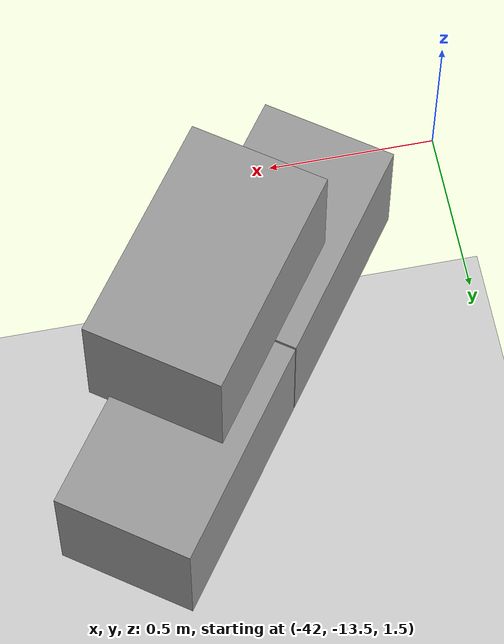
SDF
<sdf version="1.7">
 <world name="default">
  <model name="ground_plane">
   <static>1</static>
   <link name="link">
    <collision name="collision">
     <geometry><plane><normal>0 0 1</normal><size>100 100</size></plane></geometry>
     <surface>
      <contact><collide_bitmask>65535</collide_bitmask></contact>
      <friction><ode><mu>100</mu><mu2>50</mu2></ode></friction>
     </surface>
    </collision>
    <visual name="visual">
     <cast_shadows>0</cast_shadows>
     <geometry><plane><normal>0 0 1</normal><size>100 100</size></plane></geometry>
     <material>
      <script><uri>file://media/materials/scripts/gazebo.material</uri><name>Gazebo/Grey</name></script>
     </material>
    </visual>
   </link>
  </model>
  <model name="Add_Box_clone_clone_3_clone_23">
   <link name="link">
    <inertial>
     <mass>1</mass>
     <inertia>
      <ixx>0.166667</ixx>
      <ixy>0</ixy>
      <ixz>0</ixz>
      <iyy>0.166667</iyy>
      <iyz>0</iyz>
      <izz>0.166667</izz>
     </inertia>
    </inertial>
    <kinematic>1</kinematic>
    <gravity>0</gravity>
    <visual name="visual">
     <geometry><box><size>0.686 0.406 0.381</size></box></geometry>
     <material>
      <script><name>Gazebo/Grey</name><uri>file://media/materials/scripts/gazebo.material</uri></script>
      <shader type="pixel"><normal_map>__default__</normal_map></shader>
      <ambient>0.3 0.3 0.3 1</ambient>
      <diffuse>0.7 0.7 0.7 1</diffuse>
      <specular>0.01 0.01 0.01 1</specular>
      <emissive>0 0 0 1</emissive>
     </material>
    </visual>
    <collision name="collision">
     <geometry><box><size>1 1 1</size></box></geometry>
     <surface>
      <friction>
       <ode><mu>1</mu><mu2>1</mu2><fdir1>0 0 0</fdir1><slip1>0</slip1><slip2>0</slip2></ode>
       <torsional>
        <coefficient>1</coefficient>
        <patch_radius>0</patch_radius>
        <surface_radius>0</surface_radius>
        <use_patch_radius>1</use_patch_radius>
        <ode><slip>0</slip></ode>
       </torsional>
      </friction>
      <bounce><restitution_coefficient>0</restitution_coefficient><threshold>1e+06</threshold></bounce>
      <contact>
       <collide_without_contact>0</collide_without_contact>
       <collide_without_contact_bitmask>1</collide_without_contact_bitmask>
       <collide_bitmask>1</collide_bitmask>
       <ode>
        <soft_cfm>0</soft_cfm>
        <soft_erp>0.2</soft_erp>
        <kp>1e+13</kp>
        <kd>1</kd>
        <max_vel>0.01</max_vel>
        <min_depth>0</min_depth>
       </ode>
       <bullet>
        <split_impulse>1</split_impulse>
        <split_impulse_penetration_threshold>-0.01</split_impulse_penetration_threshold>
        <soft_cfm>0</soft_cfm>
        <soft_erp>0.2</soft_erp>
        <kp>1e+13</kp>
        <kd>1</kd>
       </bullet>
      </contact>
     </surface>
    </collision>
   </link>
   <link name="link_clone">
    <inertial>
     <mass>1</mass>
     <inertia>
      <ixx>0.166667</ixx>
      <ixy>0</ixy>
      <ixz>0</ixz>
      <iyy>0.166667</iyy>
      <iyz>0</iyz>
      <izz>0.166667</izz>
     </inertia>
    </inertial>
    <pose>-0.343354 -0.063316 0.354303 1e-05 -0 0</pose>
    <gravity>0</gravity>
    <visual name="visual">
     <geometry><box><size>0.686 0.406 0.381</size></box></geometry>
     <material>
      <script><name>Gazebo/Grey</name><uri>file://media/materials/scripts/gazebo.material</uri></script>
      <shader type="pixel"><normal_map>__default__</normal_map></shader>
      <ambient>0.3 0.3 0.3 1</ambient>
      <diffuse>0.7 0.7 0.7 1</diffuse>
      <specular>0.01 0.01 0.01 1</specular>
      <emissive>0 0 0 1</emissive>
     </material>
    </visual>
    <collision name="collision">
     <geometry><box><size>1 1 1</size></box></geometry>
     <surface>
      <friction>
       <ode><mu>1</mu><mu2>1</mu2><fdir1>0 0 0</fdir1><slip1>0</slip1><slip2>0</slip2></ode>
       <torsional>
        <coefficient>1</coefficient>
        <patch_radius>0</patch_radius>
        <surface_radius>0</surface_radius>
        <use_patch_radius>1</use_patch_radius>
        <ode><slip>0</slip></ode>
       </torsional>
      </friction>
      <bounce><restitution_coefficient>0</restitution_coefficient><threshold>1e+06</threshold></bounce>
      <contact>
       <collide_without_contact>0</collide_without_contact>
       <collide_without_contact_bitmask>1</collide_without_contact_bitmask>
       <collide_bitmask>1</collide_bitmask>
       <ode>
        <soft_cfm>0</soft_cfm>
        <soft_erp>0.2</soft_erp>
        <kp>1e+13</kp>
        <kd>1</kd>
        <max_vel>0.01</max_vel>
        <min_depth>0</min_depth>
       </ode>
       <bullet>
        <split_impulse>1</split_impulse>
        <split_impulse_penetration_threshold>-0.01</split_impulse_penetration_threshold>
        <soft_cfm>0</soft_cfm>
        <soft_erp>0.2</soft_erp>
        <kp>1e+13</kp>
        <kd>1</kd>
       </bullet>
      </contact>
     </surface>
    </collision>
   </link>
   <link name="link_clone_clone">
    <inertial>
     <mass>1</mass>
     <inertia>
      <ixx>0.166667</ixx>
      <ixy>0</ixy>
      <ixz>0</ixz>
      <iyy>0.166667</iyy>
      <iyz>0</iyz>
      <izz>0.166667</izz>
     </inertia>
    </inertial>
    <pose>-0.690786 -0.000183 -1e-05 2e-05 -0 0</pose>
    <gravity>0</gravity>
    <visual name="visual">
     <geometry><box><size>0.686 0.406 0.381</size></box></geometry>
     <material>
      <script><name>Gazebo/Grey</name><uri>file://media/materials/scripts/gazebo.material</uri></script>
      <shader type="pixel"><normal_map>__default__</normal_map></shader>
      <ambient>0.3 0.3 0.3 1</ambient>
      <diffuse>0.7 0.7 0.7 1</diffuse>
      <specular>0.01 0.01 0.01 1</specular>
      <emissive>0 0 0 1</emissive>
     </material>
    </visual>
    <collision name="collision">
     <geometry><box><size>1 1 1</size></box></geometry>
     <surface>
      <friction>
       <ode><mu>1</mu><mu2>1</mu2><fdir1>0 0 0</fdir1><slip1>0</slip1><slip2>0</slip2></ode>
       <torsional>
        <coefficient>1</coefficient>
        <patch_radius>0</patch_radius>
        <surface_radius>0</surface_radius>
        <use_patch_radius>1</use_patch_radius>
        <ode><slip>0</slip></ode>
       </torsional>
      </friction>
      <bounce><restitution_coefficient>0</restitution_coefficient><threshold>1e+06</threshold></bounce>
      <contact>
       <collide_without_contact>0</collide_without_contact>
       <collide_without_contact_bitmask>1</collide_without_contact_bitmask>
       <collide_bitmask>1</collide_bitmask>
       <ode>
        <soft_cfm>0</soft_cfm>
        <soft_erp>0.2</soft_erp>
        <kp>1e+13</kp>
        <kd>1</kd>
        <max_vel>0.01</max_vel>
        <min_depth>0</min_depth>
       </ode>
       <bullet>
        <split_impulse>1</split_impulse>
        <split_impulse_penetration_threshold>-0.01</split_impulse_penetration_threshold>
        <soft_cfm>0</soft_cfm>
        <soft_erp>0.2</soft_erp>
        <kp>1e+13</kp>
        <kd>1</kd>
       </bullet>
      </contact>
     </surface>
    </collision>
   </link>
   <static>0</static>
   <pose>-41.0578 -12.578 1.61518 0 -0 0.950497</pose>
  </model>
 </world>
</sdf>
